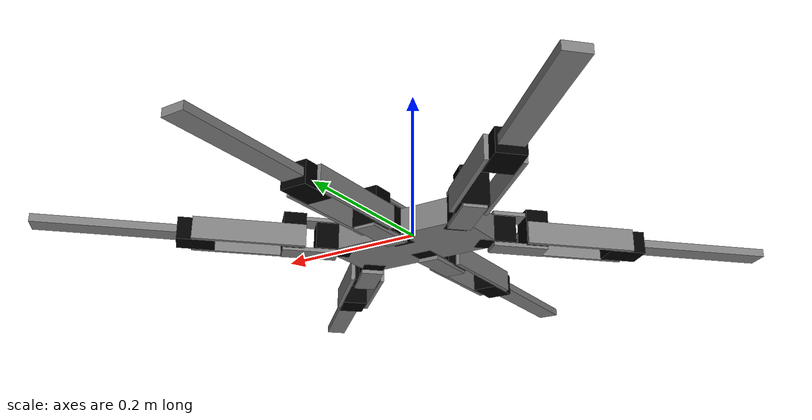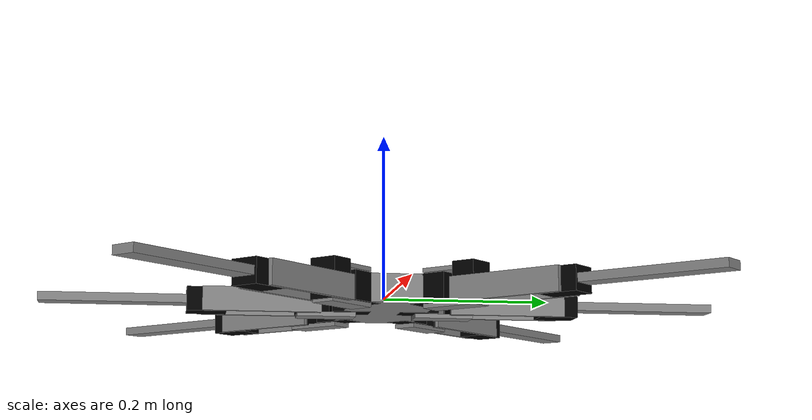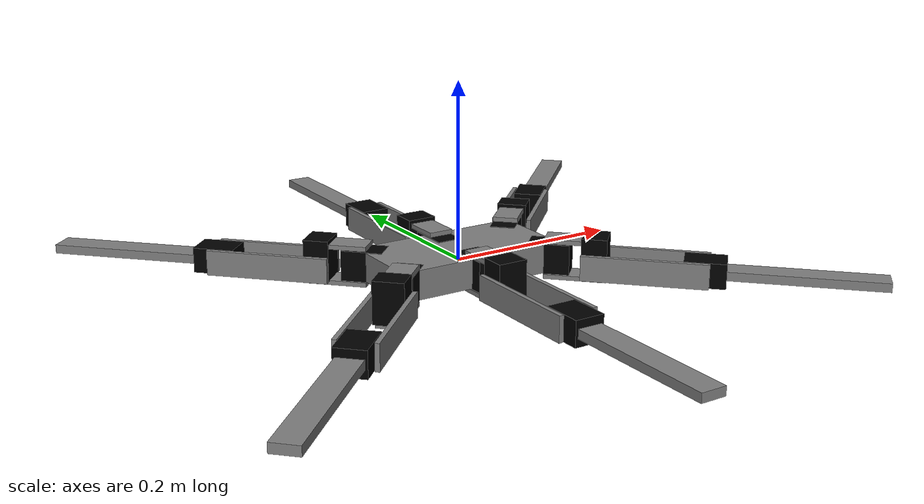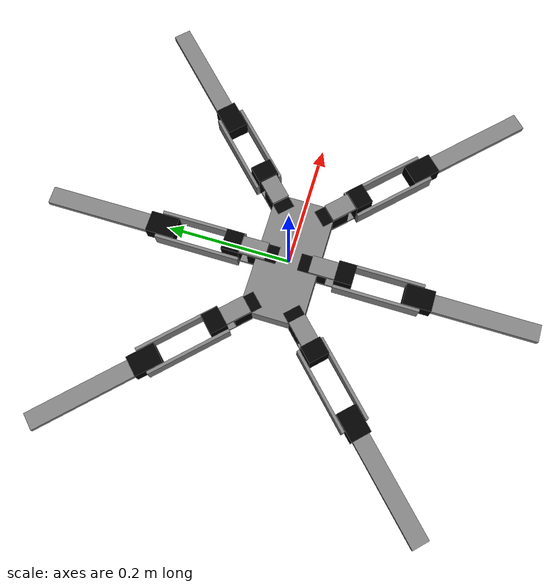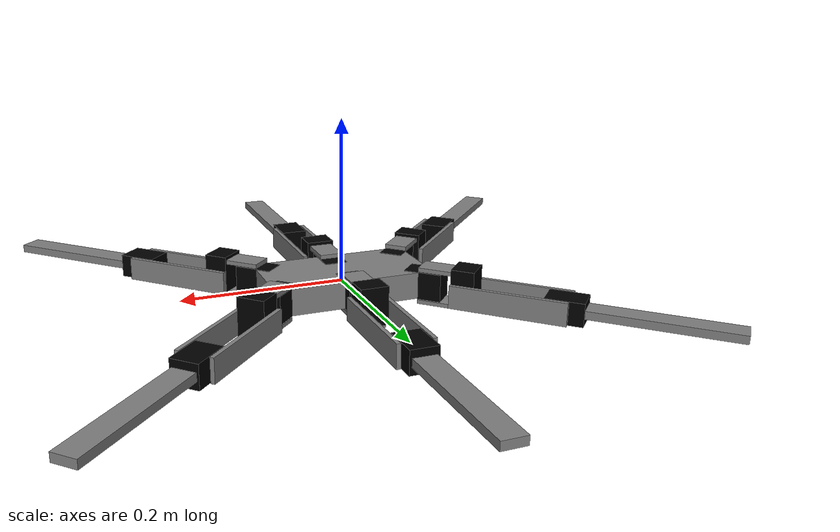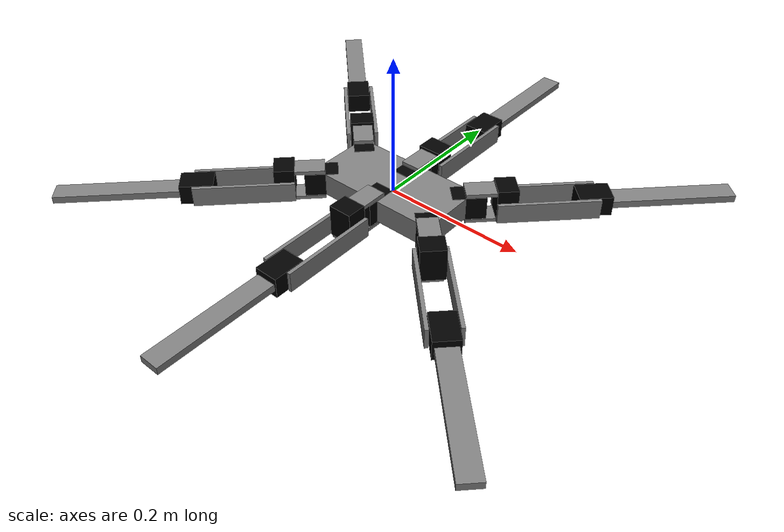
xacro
<?xml version="1.0"?>
<robot name="mayday" xmlns:xacro="http://ros.org/wiki/xacro">

  <xacro:property name="robotname" value="mayday" />

  <xacro:property name="width" value="0.2" />
  <xacro:property name="leglen" value="0.6" />
  <xacro:property name="polelen" value="0.2" />
  <xacro:property name="bodylen" value="0.6" />
  <xacro:property name="baselen" value="0.4" />
  <xacro:property name="wheeldiam" value="0.07" />
  <xacro:property name="tau" value="${pi*2}" />

  <xacro:property name="tolerance" value="0.001" />

  <xacro:property name="dynamixel_x" value="0.0465" />
  <xacro:property name="dynamixel_y" value="0.0285" />
  <xacro:property name="dynamixel_z" value="0.034" />
  <xacro:property name="dynamixel_weight" value="0.0572" />

  <xacro:property name="thorax_x" value="0.2" />
  <xacro:property name="thorax_y" value="0.1" />
  <xacro:property name="thorax_z" value="${dynamixel_z - tolerance}" />
  <xacro:property name="thorax_weight" value="0.5" />

  <xacro:property name="coxa_x" value="${dynamixel_x*1.5}" />
  <xacro:property name="coxa_y" value="${dynamixel_y}" />
  <xacro:property name="coxa_z" value="0.005" />
  <xacro:property name="coxa_weight" value="0.005" />

  <xacro:property name="femur_x" value="${dynamixel_x*3}" />
  <xacro:property name="femur_y" value="${dynamixel_y}" />
  <xacro:property name="femur_z" value="0.005" />
  <xacro:property name="femur_weight" value="0.01" />

  <xacro:property name="tibia_x" value="0.2" />
  <xacro:property name="tibia_y" value="${dynamixel_y}" />
  <xacro:property name="tibia_z" value="0.01" />
  <xacro:property name="tibia_weight" value="0.05" />

  <material name="black">
    <color rgba="0 0 0 1"/>
  </material>

  <material name="grey">
    <color rgba="0.5 0.5 0.5 1"/>
  </material>

  <material name="white">
    <color rgba="1 1 1 1"/>
  </material>

  <!-- box_inertial_macro  -->
  <xacro:macro name="box_inertial" params="mass x y z x_ y_ z_">
    <inertial>
      <origin xyz="${x_} ${y_} ${z_}" rpy="0 0 0"/>
      <mass value="${mass}" />
      <inertia ixx="${mass*(1/12)*(y*y + z*z)}" ixy="0.0" ixz="0.0" iyy="${mass*(1/12)*(x*x + z*z)}" iyz="0.0"
        izz="${mass*(1/12)*(x*x + y*y)}" />
    </inertial>
  </xacro:macro>

  <!-- dynamixel_macro  -->
  <xacro:macro name="dynamixel" params="prefix">
    <link name="${prefix}_dynamixel">
      <visual>
        <geometry>
          <box size="${dynamixel_x} ${dynamixel_y} ${dynamixel_z}"/>
        </geometry>
        <origin xyz="${-dynamixel_x/2+dynamixel_y/2} 0 0" rpy="0 0 0"/>
        <material name="black"/>
      </visual>
      <collision>
        <geometry>
          <box size="${dynamixel_x} ${dynamixel_y} ${dynamixel_z}"/>
        </geometry>
        <origin xyz="${-dynamixel_x/2 + dynamixel_y/2} 0 0" rpy="0 0 0"/>
      </collision>
      <xacro:box_inertial mass="${dynamixel_weight}" x="${dynamixel_x}" y="${dynamixel_y}" z="${dynamixel_z}"
                          x_="${-dynamixel_x/2 + dynamixel_y/2}" y_="0" z_="0" />
    </link>
  </xacro:macro>

  <link name="base_link">
  </link>

  <!-- thorax  -->
  <link name="thorax">
    <visual>
      <geometry>
        <box size="${thorax_x} ${thorax_y} ${thorax_z}"/>
      </geometry>
      <origin xyz="0 0 0" rpy="0 0 0"/>
      <material name="grey"/>
    </visual>
    <collision>
      <geometry>
        <box size="${thorax_x} ${thorax_y} ${thorax_z}"/>
      </geometry>
      <origin xyz="0 0 0" rpy="0 0 0"/>
    </collision>
    <xacro:box_inertial mass="${thorax_weight}" x="${thorax_x}" y="${thorax_y}" z="${thorax_z}"
                        x_="0" y_="0" z_="0" />
  </link>
  <joint name="base_link_to_thorax_joint" type="fixed">
    <parent link="base_link"/>
    <child link="thorax"/>
    <origin xyz="0 0 0" rpy="0 0 0"/>
  </joint>

  <gazebo reference="thorax">
    <mu1 value="0.2"/>
    <mu2 value="0.2"/>
    <kp value="10000000.0" />
    <kd value="1.0" />
    <material>Gazebo/Grey</material>
    <selfCollide>True</selfCollide>
  </gazebo>

  <!-- coxa macro  -->
  <xacro:macro name="coxa" params="prefix">
    <link name="${prefix}_coxa">
      <visual>
        <geometry>
          <box size="${coxa_x} ${coxa_y} ${coxa_z}"/>
        </geometry>
        <origin xyz="${(coxa_x/2-dynamixel_y/2)} 0 0" rpy="0 0 0"/>
        <material name="grey"/>
      </visual>
      <collision>
        <geometry>
          <box size="${coxa_x} ${coxa_y} ${coxa_z}"/>
        </geometry>
        <origin xyz="${coxa_x/2-dynamixel_y/2} 0 0" rpy="0 0 0"/>
      </collision>
      <xacro:box_inertial mass="${coxa_weight}" x="${coxa_x}" y="${coxa_y}" z="${coxa_z}"
                          x_="${coxa_x/2-dynamixel_y/2}" y_="0" z_="0"/>
    </link>
  </xacro:macro>

  <!-- femur macro  -->
  <xacro:macro name="femur" params="prefix">
    <link name="${prefix}_femur">
      <visual>
        <geometry>
          <box size="${femur_x} ${femur_y} ${femur_z}"/>
        </geometry>
        <origin xyz="${femur_x/2-dynamixel_y/2} 0 0" rpy="0 0 0"/>
        <material name="grey"/>
      </visual>
      <collision>
        <geometry>
          <box size="${femur_x} ${femur_y} ${femur_z}"/>
        </geometry>
        <origin xyz="${femur_x/2-dynamixel_y/2} 0 0" rpy="0 0 0"/>
      </collision>
      <xacro:box_inertial mass="${femur_weight}" x="${femur_x}" y="${femur_y}" z="${femur_z}"
                          x_="${femur_x/2-dynamixel_y/2}" y_="0" z_="0"/>
    </link>
  </xacro:macro>

  <xacro:macro name="leg" params="prefix x_offset yaw_offset reflect">

    <!-- coxa_dynamixel  -->
    <xacro:dynamixel prefix="${prefix}_coxa" />
    <joint name="${prefix}_thorax_to_coxa_dynamixel_joint" type="fixed">
      <parent link="thorax"/>
      <child link="${prefix}_coxa_dynamixel"/>
      <origin xyz="${x_offset} ${reflect*thorax_y/2} 0" rpy="0 0 ${reflect*yaw_offset}"/>
    </joint>

    <!-- top_coxa -->
    <xacro:coxa prefix="${prefix}_top" />
    <joint name="${prefix}_coxa_dynamixel_to_top_coxa_joint" type="revolute">
      <axis xyz="0 0 1"/>
      <limit effort="1.5" lower="${-tau*1/8}" upper="${tau*1/8}" velocity="${2*tau}"/>
      <parent link="${prefix}_coxa_dynamixel"/>
      <child link="${prefix}_top_coxa"/>
      <origin xyz="0 0 ${dynamixel_z/2 + coxa_z/2 + tolerance}" rpy="0 0 0" />
      <dynamics damping="0.01" friction="0.1"/>
    </joint>
    <transmission name="${prefix}_coxa_dynamixel_to_top_coxa_joint_transmission">
      <type>transmission_interface/SimpleTransmission</type>
      <joint name="${prefix}_coxa_dynamixel_to_top_coxa_joint">
        <hardwareInterface>hardware_interface/EffortJointInterface</hardwareInterface>
      </joint>
      <actuator name="${prefix}_coxa_dynamixel_to_top_coxa_joint_motor">
        <hardwareInterface>hardware_interface/EffortJointInterface</hardwareInterface>
        <mechanicalReduction>1</mechanicalReduction>
      </actuator>
    </transmission>

    <!-- bottom_coxa  -->
    <xacro:coxa prefix="${prefix}_bottom" />
    <joint name="${prefix}_femur_dynamixel_to_bottom_coxa_joint" type="fixed">
      <parent link="${prefix}_top_coxa"/>
      <child link="${prefix}_bottom_coxa"/>
      <origin xyz="0 0 ${-(dynamixel_z+coxa_z+tolerance*2)}" rpy="${tau/2} 0 0"/>
    </joint>

    <!-- femur_dynamixel  -->
    <xacro:dynamixel prefix="${prefix}_femur" />
    <joint name="${prefix}_top_coxa_to_femur_dynamixel_joint" type="fixed">
      <parent link="${prefix}_top_coxa"/>
      <child link="${prefix}_femur_dynamixel"/>
      <origin xyz="${coxa_x/2 - dynamixel_y/2  +  coxa_x/2 - dynamixel_y/2 + tolerance/2} 0 ${-(dynamixel_x/2 + coxa_z/2)}" rpy="${-tau/4} ${tau/4} 0"/>
    </joint>

    <!-- left_femur -->
    <xacro:femur prefix="${prefix}_left" />
    <joint name="${prefix}_femur_dynamixel_to_left_femur_joint" type="revolute">
      <axis xyz="0 0 1"/>
      <limit effort="1.5" lower="${-tau*3/8}" upper="${tau*3/8}" velocity="${2*tau}"/>
      <parent link="${prefix}_femur_dynamixel"/>
      <child link="${prefix}_left_femur"/>
      <origin xyz="0 0 ${dynamixel_z/2 + femur_z/2 + tolerance}" rpy="0 0 ${-tau/4}" />
      <dynamics damping="0.01" friction="0.1"/>
    </joint>
    <transmission name="${prefix}_femur_dynamixel_to_left_femur_joint_transmission">
      <type>transmission_interface/SimpleTransmission</type>
      <joint name="${prefix}_femur_dynamixel_to_left_femur_joint">
        <hardwareInterface>hardware_interface/EffortJointInterface</hardwareInterface>
      </joint>
      <actuator name="${prefix}_femur_dynamixel_to_left_femur_joint_motor">
        <hardwareInterface>hardware_interface/EffortJointInterface</hardwareInterface>
        <mechanicalReduction>1</mechanicalReduction>
      </actuator>
    </transmission>

    <!-- right_femur  -->
    <xacro:femur prefix="${prefix}_right" />
    <joint name="${prefix}_left_femur_to_right_femur_joint" type="fixed">
      <parent link="${prefix}_left_femur"/>
      <child link="${prefix}_right_femur"/>
      <origin xyz="0 0 ${-(dynamixel_z + femur_z + tolerance*2)}" rpy="${tau/2} 0 0"/>
    </joint>

    <!-- tibia_dynamixel  -->
    <xacro:dynamixel prefix="${prefix}_tibia" />
    <joint name="${prefix}_left_femur_to_tibia_dynamixel_joint" type="revolute">
      <parent link="${prefix}_left_femur"/>
      <child link="${prefix}_tibia_dynamixel"/>
      <origin xyz="${femur_x - dynamixel_y} 0 ${-(dynamixel_z/2 + femur_z/2 + tolerance)}" rpy="${tau/2} ${tau/2} 0" />
      <axis xyz="0 0 1"/>
      <limit effort="1.5" lower="${-tau*3/8}" upper="${tau*3/8}" velocity="${2*tau}"/>
      <dynamics damping="0.01" friction="0.1"/>
    </joint>
    <transmission name="${prefix}_left_femur_to_tibia_dynamixel_joint_transmission">
      <type>transmission_interface/SimpleTransmission</type>
      <joint name="${prefix}_left_femur_to_tibia_dynamixel_joint">
        <hardwareInterface>hardware_interface/EffortJointInterface</hardwareInterface>
      </joint>
      <actuator name="${prefix}_left_femur_to_tibia_dynamixel_joint_motor">
        <hardwareInterface>hardware_interface/EffortJointInterface</hardwareInterface>
        <mechanicalReduction>1</mechanicalReduction>
      </actuator>
    </transmission>

    <!-- tibia -->
    <link name="${prefix}_tibia">
      <visual>
        <geometry>
          <box size="${tibia_x} ${tibia_y} ${tibia_z}"/>
        </geometry>
        <origin xyz="${tibia_x/2 - dynamixel_y/2 + dynamixel_z/2} 0 0" rpy="0 0 0"/>
        <material name="grey"/>
      </visual>
      <collision>
        <geometry>
          <box size="${tibia_x} ${tibia_y} ${tibia_z}"/>
        </geometry>
        <origin xyz="${tibia_x/2 - dynamixel_y/2 + dynamixel_z/2} 0 0" rpy="0 0 0"/>
      </collision>
      <xacro:box_inertial mass="${tibia_weight}" x="${tibia_x}" y="${tibia_y}" z="${tibia_z}"
                          x_="${tibia_x/2 - dynamixel_y/2 + dynamixel_z/2}" y_="0" z_="0"/>
    </link>
    <joint name="${prefix}_tibia_dynamixel_to_tibia_joint" type="fixed">
      <parent link="${prefix}_tibia_dynamixel"/>
      <child link="${prefix}_tibia"/>
      <origin xyz="0 0 0" rpy="${tau/4} 0 ${tau/2}" />
    </joint>

    <!-- This block provides the simulator (Gazebo) with information on a few additional
    physical properties. See http://gazebosim.org/tutorials/?tut=ros_urdf for more-->

    <gazebo reference="${prefix}_top_coxa">
      <mu1 value="0.2"/>
      <mu2 value="0.2"/>
      <kp value="10000000.0" />
      <kd value="1.0" />
      <material>Gazebo/Grey</material>
      <selfCollide>True</selfCollide>
    </gazebo>

    <gazebo reference="${prefix}_bottom_coxa">
      <mu1 value="0.2"/>
      <mu2 value="0.2"/>
      <kp value="10000000.0" />
      <kd value="1.0" />
      <material>Gazebo/Grey</material>
      <selfCollide>True</selfCollide>
    </gazebo>

    <gazebo reference="${prefix}_right_femur">
      <mu1 value="0.2"/>
      <mu2 value="0.2"/>
      <kp value="10000000.0" />
      <kd value="1.0" />
      <material>Gazebo/Grey</material>
      <selfCollide>True</selfCollide>
    </gazebo>

    <gazebo reference="${prefix}_left_femur">
      <mu1 value="0.2"/>
      <mu2 value="0.2"/>
      <kp value="10000000.0" />
      <kd value="1.0" />
      <material>Gazebo/Grey</material>
      <selfCollide>True</selfCollide>
    </gazebo>

    <gazebo reference="${prefix}_tibia">
      <mu1 value="0.2"/>
      <mu2 value="0.2"/>
      <kp value="10000000.0" />
      <kd value="1.0" />
      <material>Gazebo/Grey</material>
      <selfCollide>True</selfCollide>
    </gazebo>

    <gazebo reference="${prefix}_coxa_dynamixel">
      <mu1 value="0.2"/>
      <mu2 value="0.2"/>
      <kp value="10000000.0" />
      <kd value="1.0" />
      <material>Gazebo/Black</material>
      <selfCollide>True</selfCollide>
    </gazebo>

    <gazebo reference="${prefix}_femur_dynamixel">
      <mu1 value="0.2"/>
      <mu2 value="0.2"/>
      <kp value="10000000.0" />
      <kd value="1.0" />
      <material>Gazebo/Black</material>
      <selfCollide>True</selfCollide>
    </gazebo>

    <gazebo reference="${prefix}_tibia_dynamixel">
      <mu1 value="0.2"/>
      <mu2 value="0.2"/>
      <kp value="10000000.0" />
      <kd value="1.0" />
      <material>Gazebo/Black</material>
      <selfCollide>True</selfCollide>
    </gazebo>

  </xacro:macro>

  <!-- legs  -->
  <xacro:leg prefix="right_front"  x_offset="${thorax_x/2}" yaw_offset="${tau*1/8}" reflect="-1" />
  <xacro:leg prefix="right_center" x_offset="0.0"            yaw_offset="${tau*2/8}" reflect="-1" />
  <xacro:leg prefix="right_hind"   x_offset="${-thorax_x/2}" yaw_offset="${tau*3/8}" reflect="-1" />
  <xacro:leg prefix="left_front"   x_offset="${thorax_x/2}"  yaw_offset="${tau*1/8}" reflect="1" />
  <xacro:leg prefix="left_center"  x_offset="0.0"            yaw_offset="${tau*2/8}" reflect="1" />
  <xacro:leg prefix="left_hind"    x_offset="${-thorax_x/2}" yaw_offset="${tau*3/8}" reflect="1" />

  <gazebo>
    <plugin name="gazebo_ros_control" filename="libgazebo_ros_control.so">
      <robotNamespace>/mayday</robotNamespace>
      <legacyModeNS>true</legacyModeNS>
    </plugin>
  </gazebo>
</robot>
